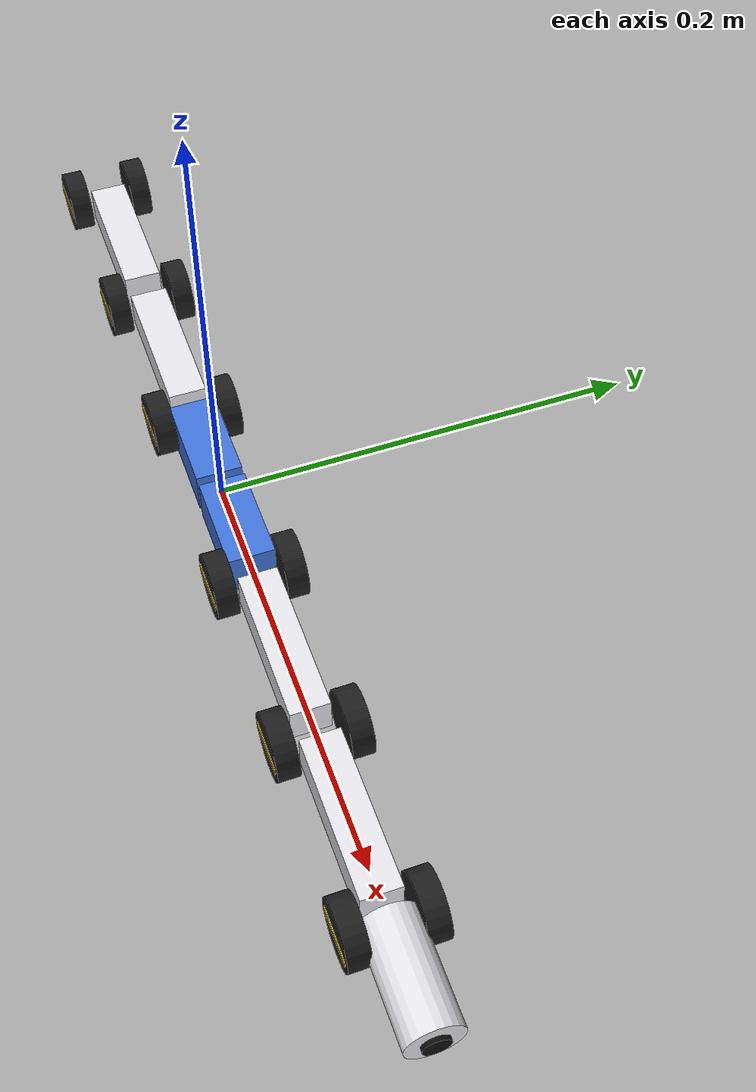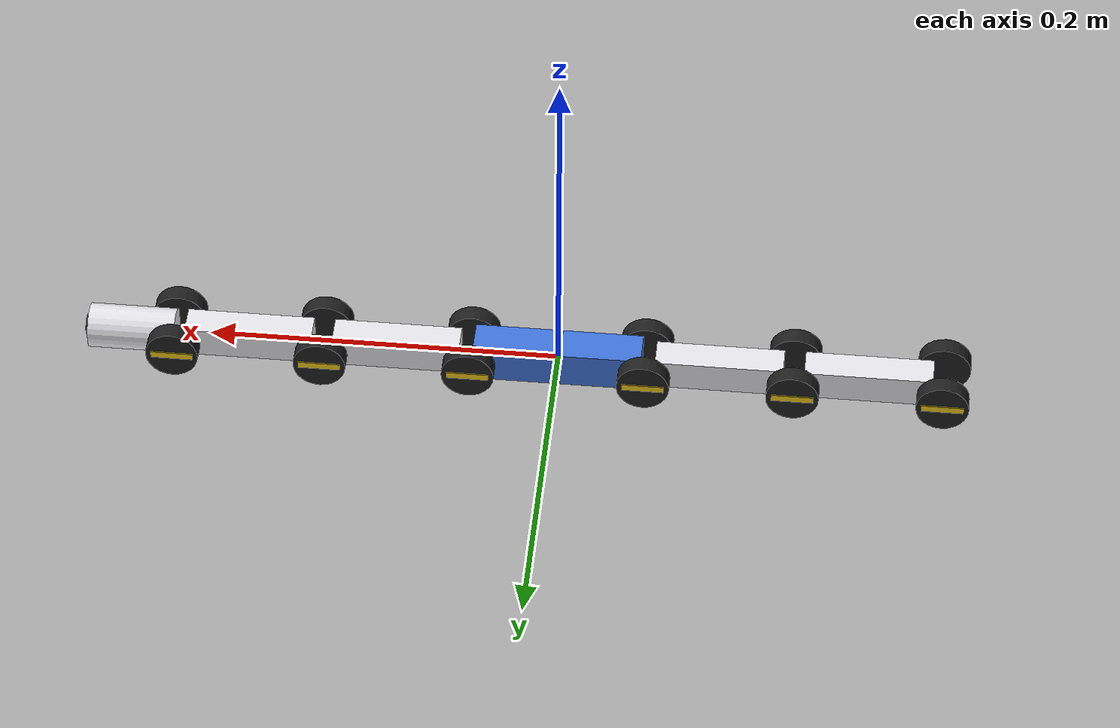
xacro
<?xml version="1.0"?>
<robot name="snake_v" xmlns:xacro="http://www.ros.org/wiki/xacro">
  <xacro:arg name="pipe_inner_d" default="0.1008"/>
  <xacro:arg name="params_file" default=""/>
  <xacro:arg name="suspension" default="all"/>
  <xacro:include filename="$(find pipe_robot_sim)/models/common/common.xacro"/>

  <!-- ===== 치수 ===== -->
  <xacro:property name="L" value="0.085"/>      <!-- V 팔 (관절 ~ 관절) -->
  <xacro:property name="Lm" value="0.10"/>      <!-- 가운데 링크 (J2 ~ J4), 가운데에 J3 -->
  <xacro:property name="Lh" value="0.05"/>      <!-- 머리 (J6 ~ 앞 끝) -->
  <xacro:property name="bw" value="0.018"/>     <!-- 링크 단면 (정사각) -->
  <xacro:property name="rw" value="0.015"/>     <!-- 바퀴 반경 (Ø30) -->
  <xacro:property name="ww" value="0.010"/>     <!-- 바퀴 폭 -->
  <xacro:property name="yw" value="0.016"/>     <!-- 바퀴 중심의 좌우 위치 (±) -->

  <!-- 질량 (링크 안 서보 포함, 추정). 총 약 0.75 kg -->
  <xacro:arg name="mass_scale" default="1.0"/>   <!-- 비교 시험용: 링크 질량 배율 -->
  <xacro:property name="m_arm" value="${0.07*$(arg mass_scale)}"/>
  <xacro:property name="m_mid" value="${0.08*$(arg mass_scale)}"/>   <!-- 가운데 링크 반쪽 2개 (배터리·보드) -->
  <xacro:property name="m_head" value="${0.06*$(arg mass_scale)}"/>
  <xacro:property name="m_wheel" value="0.012"/>

  <!-- 바퀴 모터: N20 1:100 추정 (스톨 0.147 N·m, 무부하 16.8 rad/s), 감쇠 = 스톨/무부하 -->
  <xacro:arg name="motor_stall" default="0.147"/>   <!-- 비교 시험용: robot.yaml motor_stall_torque 와 같게 -->
  <xacro:property name="wheel_damping" value="${$(arg motor_stall)/16.8}"/>
  <xacro:arg name="mu_wheel" default="0.8"/>
  <xacro:property name="mu_wheel" value="$(arg mu_wheel)"/>   <!-- 고무 바퀴 ↔ PVC, 추정 -->

  <!-- 관절 서보 (추정): 꼭짓점 J1, J5 = 누르는 관절, 나머지 = 자세 유지 -->
  <xacro:arg name="servo_p" default="2"/>   <!-- 서보 위치 게인 [N·m/rad] -->
  <xacro:arg name="servo_scale" default="1.0"/>   <!-- 비교 시험용: 서보 토크 한계 배율 -->
  <xacro:property name="t_clamp" value="${1.2*$(arg servo_scale)}"/>    <!-- J1, J5 토크 한계 [N·m] -->
  <xacro:property name="t_hold" value="${1.0*$(arg servo_scale)}"/>
  <xacro:arg name="roll_scale" default="1.0"/>
  <xacro:property name="t_roll" value="${0.5*$(arg servo_scale)*$(arg roll_scale)}"/>
  <xacro:property name="jlim" value="${radians(120)}"/>
  <!-- 서보 감쇠는 관절 damping 으로 (DART 가 암시적으로 적분 -> 안정). 제어기 d_gain 은 0:
       d_gain 은 오차의 미분이라 목표가 바뀔 때마다(50 Hz) 한 스텝 동안 최대 토크로 차서 관절이 속도 한계(3 rad/s)로
       떨렸음 (2026-10-20, 이전 d_gain 0.05 + damping 0.02) -->
  <xacro:property name="servo_damping" value="0.07"/>

  <!-- ===== 매크로 ===== -->
  <xacro:macro name="arm_link" params="name dir length mass">
    <!-- dir = +1: 관절에서 +x 로 뻗음, -1: -x 로 -->
    <link name="${name}">
      <visual>
        <origin xyz="${dir*length/2} 0 0" rpy="0 0 0"/>
        <geometry><box size="${length - 2*rw*0.4} ${bw} ${bw}"/></geometry>
        <material name="snake_white"><color rgba="0.9 0.9 0.92 1"/></material>
      </visual>
      <collision>
        <origin xyz="${dir*length/2} 0 0" rpy="0 0 0"/>
        <geometry><box size="${length - 2*rw*1.1} ${bw} ${bw}"/></geometry>
      </collision>
      <xacro:inertial_box m="${mass}" x="${length}" y="${bw}" z="${bw}" xyz="${dir*length/2} 0 0"/>
    </link>
  </xacro:macro>

  <!-- 바퀴 한 쌍 (구동). name_l / name_r, 충돌체는 구 (배관 곡면과 접촉이 안정적)
       spin = -1: 위 벽에 닿는 꼭짓점 바퀴 (J1, J5). 축을 뒤집어 같은 + 속도 명령에 로봇이 앞으로 가게 함 -->
  <xacro:macro name="wheel_pair" params="name parent x spin:=1">
    <xacro:wheel name="${name}_l" parent="${parent}" x="${x}" side="1" spin="${spin}"/>
    <xacro:wheel name="${name}_r" parent="${parent}" x="${x}" side="-1" spin="${spin}"/>
  </xacro:macro>
  <xacro:macro name="wheel" params="name parent x side spin">
    <joint name="${name}_joint" type="continuous">
      <parent link="${parent}"/>
      <child link="${name}"/>
      <origin xyz="${x} ${side*yw} 0" rpy="0 0 0"/>
      <axis xyz="0 ${spin} 0"/>
      <dynamics damping="${wheel_damping}" friction="0"/>
    </joint>
    <link name="${name}">
      <visual>
        <origin xyz="0 0 0" rpy="${pi/2} 0 0"/>
        <geometry><cylinder radius="${rw}" length="${ww}"/></geometry>
        <material name="tire_black"><color rgba="0.12 0.12 0.12 1"/></material>
      </visual>
      <visual>   <!-- 회전이 보이게 하는 표시 -->
        <origin xyz="0 ${side*ww/2} 0" rpy="${pi/2} 0 0"/>
        <geometry><box size="${1.6*rw} 0.004 0.001"/></geometry>
        <material name="mark_yellow"><color rgba="0.95 0.8 0.1 1"/></material>
      </visual>
      <collision>
        <geometry><sphere radius="${rw}"/></geometry>
      </collision>
      <xacro:inertial_cyl m="${m_wheel}" r="${rw}" l="${ww}" rpy="${pi/2} 0 0"/>
    </link>
    <xacro:friction link="${name}" mu="${mu_wheel}"/>
    <xacro:joint_force joint="${name}_joint"/>
  </xacro:macro>

  <xacro:macro name="pitch_joint" params="name parent child x tmax p">
    <joint name="${name}" type="revolute">
      <parent link="${parent}"/>
      <child link="${child}"/>
      <origin xyz="${x} 0 0" rpy="0 0 0"/>
      <axis xyz="0 1 0"/>
      <limit lower="${-jlim}" upper="${jlim}" effort="${tmax}" velocity="3.0"/>
      <dynamics damping="${servo_damping}" friction="0"/>
    </joint>
    <xacro:joint_servo joint="${name}" p="${p}" d="0" tmax="${tmax}"/>
  </xacro:macro>

  <!-- ===== 가운데 링크 ===== -->
  <link name="base_link">
    <visual>
      <origin xyz="${Lm/4} 0 0" rpy="0 0 0"/>
      <geometry><box size="${Lm/2 - 0.004} ${bw*1.2} ${bw*1.2}"/></geometry>
      <material name="snake_blue"><color rgba="0.25 0.45 0.85 1"/></material>
    </visual>
    <collision>
      <origin xyz="${Lm/4 - rw*0.55} 0 0" rpy="0 0 0"/>
      <geometry><box size="${Lm/2 - rw*1.1} ${bw} ${bw}"/></geometry>
    </collision>
    <xacro:inertial_box m="${m_mid}" x="${Lm/2}" y="${bw}" z="${bw}" xyz="${Lm/4} 0 0"/>
  </link>

  <!-- J3: 비틀기 (축 x) -->
  <joint name="j3_joint" type="revolute">
    <parent link="base_link"/>
    <child link="mid_rear"/>
    <origin xyz="0 0 0" rpy="0 0 0"/>
    <axis xyz="1 0 0"/>
    <limit lower="${-pi}" upper="${pi}" effort="${t_roll}" velocity="3.0"/>
    <dynamics damping="${servo_damping}" friction="0"/>
  </joint>
  <xacro:joint_servo joint="j3_joint" p="3" d="0" tmax="${t_roll}"/>
  <link name="mid_rear">
    <visual>
      <origin xyz="${-Lm/4} 0 0" rpy="0 0 0"/>
      <geometry><box size="${Lm/2 - 0.004} ${bw*1.2} ${bw*1.2}"/></geometry>
      <material name="snake_blue"/>
    </visual>
    <collision>
      <origin xyz="${-Lm/4 + rw*0.55} 0 0" rpy="0 0 0"/>
      <geometry><box size="${Lm/2 - rw*1.1} ${bw} ${bw}"/></geometry>
    </collision>
    <xacro:inertial_box m="${m_mid}" x="${Lm/2}" y="${bw}" z="${bw}" xyz="${-Lm/4} 0 0"/>
  </link>

  <!-- ===== 앞쪽: J4(w4) ─ f1 ─ J5(w5) ─ f2 ─ J6(w6) ─ 머리 ===== -->
  <xacro:wheel_pair name="w4" parent="base_link" x="${Lm/2}"/>
  <xacro:pitch_joint name="j4_joint" parent="base_link" child="f1" x="${Lm/2}" tmax="${t_hold}" p="$(arg servo_p)"/>
  <xacro:arm_link name="f1" dir="1" length="${L}" mass="${m_arm}"/>
  <xacro:wheel_pair name="w5" parent="f1" x="${L}" spin="-1"/>
  <xacro:pitch_joint name="j5_joint" parent="f1" child="f2" x="${L}" tmax="${t_clamp}" p="$(arg servo_p)"/>
  <xacro:arm_link name="f2" dir="1" length="${L}" mass="${m_arm}"/>
  <xacro:wheel_pair name="w6" parent="f2" x="${L}"/>
  <xacro:pitch_joint name="j6_joint" parent="f2" child="head" x="${L}" tmax="${t_hold}" p="$(arg servo_p)"/>
  <link name="head">
    <visual>
      <origin xyz="${Lh/2} 0 0" rpy="0 ${pi/2} 0"/>
      <geometry><cylinder radius="${bw*0.7}" length="${Lh}"/></geometry>
      <material name="snake_white"/>
    </visual>
    <visual>   <!-- 카메라 -->
      <origin xyz="${Lh} 0 0" rpy="0 ${pi/2} 0"/>
      <geometry><cylinder radius="0.006" length="0.004"/></geometry>
      <material name="cam_black"><color rgba="0.05 0.05 0.05 1"/></material>
    </visual>
    <collision>
      <origin xyz="${Lh/2 + rw*0.5} 0 0" rpy="0 ${pi/2} 0"/>
      <geometry><cylinder radius="${bw*0.7}" length="${Lh - rw}"/></geometry>
    </collision>
    <xacro:inertial_cyl m="${m_head}" r="${bw*0.7}" l="${Lh}" xyz="${Lh/2} 0 0" rpy="0 ${pi/2} 0"/>
  </link>

  <!-- ===== 뒤쪽: J2(w3) ─ r2 ─ J1(w2) ─ r1 ─ w1 ===== -->
  <xacro:wheel_pair name="w3" parent="mid_rear" x="${-Lm/2}"/>
  <xacro:pitch_joint name="j2_joint" parent="mid_rear" child="r2" x="${-Lm/2}" tmax="${t_hold}" p="$(arg servo_p)"/>
  <xacro:arm_link name="r2" dir="-1" length="${L}" mass="${m_arm}"/>
  <xacro:wheel_pair name="w2" parent="r2" x="${-L}" spin="-1"/>
  <xacro:pitch_joint name="j1_joint" parent="r2" child="r1" x="${-L}" tmax="${t_clamp}" p="$(arg servo_p)"/>
  <xacro:arm_link name="r1" dir="-1" length="${L}" mass="${m_arm}"/>
  <xacro:wheel_pair name="w1" parent="r1" x="${-L}"/>

  <!-- ===== 시뮬 플러그인 (IMU 는 가운데 링크) ===== -->
  <xacro:sim_common imu_parent="base_link" imu_xyz="${Lm/4} 0 0"/>
</robot>

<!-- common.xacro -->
<!-- 모델 공통 매크로: 관성, 옴니휠(롤러), 시뮬 플러그인 (docs/02 규약)
     단위 m, kg, rad. 함수는 sin, cos, asin, atan2, sqrt, radians, pi 만 씀 (VS Code URDF Visualizer와 xacro 둘 다 지원) -->
<robot xmlns:xacro="http://www.ros.org/wiki/xacro">

  <!-- ===== 관성 (아주 작은 값은 1e-8을 더해 0이 되지 않게) ===== -->
  <xacro:macro name="inertial_box" params="m x y z xyz:='0 0 0' rpy:='0 0 0'">
    <inertial>
      <origin xyz="${xyz}" rpy="${rpy}"/>
      <mass value="${m}"/>
      <inertia ixx="${m*(y*y+z*z)/12 + 1e-8}" ixy="0" ixz="0" iyy="${m*(x*x+z*z)/12 + 1e-8}" iyz="0"
               izz="${m*(x*x+y*y)/12 + 1e-8}"/>
    </inertial>
  </xacro:macro>

  <!-- 원기둥: 축은 origin 회전 후의 z -->
  <xacro:macro name="inertial_cyl" params="m r l xyz:='0 0 0' rpy:='0 0 0'">
    <inertial>
      <origin xyz="${xyz}" rpy="${rpy}"/>
      <mass value="${m}"/>
      <inertia ixx="${m*(3*r*r+l*l)/12 + 1e-8}" ixy="0" ixz="0" iyy="${m*(3*r*r+l*l)/12 + 1e-8}" iyz="0"
               izz="${m*r*r/2 + 1e-8}"/>
    </inertial>
  </xacro:macro>

  <xacro:macro name="inertial_sphere" params="m r xyz:='0 0 0'">
    <inertial>
      <origin xyz="${xyz}" rpy="0 0 0"/>
      <mass value="${m}"/>
      <inertia ixx="${0.4*m*r*r + 1e-8}" ixy="0" ixz="0" iyy="${0.4*m*r*r + 1e-8}" iyz="0" izz="${0.4*m*r*r + 1e-8}"/>
    </inertial>
  </xacro:macro>

  <!-- spin = -1: 위 벽에 닿는 바퀴 (축을 뒤집어 같은 + 속도 명령에 앞으로 감) -->
  <xacro:macro name="omni_wheel" params="name parent xyz R width n rr row hub_mass roller_mass mu damping spin:=1">
    <joint name="${name}_joint" type="continuous">
      <parent link="${parent}"/>
      <child link="${name}"/>
      <origin xyz="${xyz}" rpy="0 0 0"/>
      <axis xyz="0 ${spin} 0"/>
      <dynamics damping="${damping}" friction="0"/>
    </joint>
    <link name="${name}">
      <visual>
        <origin xyz="0 0 0" rpy="${pi/2} 0 0"/>
        <geometry><cylinder radius="${R - 1.6*rr}" length="${width*0.8}"/></geometry>
        <material name="omni_hub"><color rgba="0.75 0.75 0.78 1"/></material>
      </visual>
      <xacro:inertial_cyl m="${hub_mass}" r="${R - rr}" l="${width}" rpy="${pi/2} 0 0"/>
    </link>
    <xacro:omni_rollers hub="${name}" n="${n}" i="0" R="${R}" rr="${rr}" y="${-row}" phase="0"
                        m="${roller_mass}" mu="${mu}" tag="a"/>
    <xacro:omni_rollers hub="${name}" n="${n}" i="0" R="${R}" rr="${rr}" y="${row}" phase="${pi/n}"
                        m="${roller_mass}" mu="${mu}" tag="b"/>
  </xacro:macro>

  <!-- 롤러 한 줄 (재귀). 롤러 중심은 허브 중심에서 R-rr, 축은 접선 (-sin, 0, cos) -->
  <xacro:macro name="omni_rollers" params="hub n i R rr y phase m mu tag">
    <xacro:if value="${i &lt; n}">
      <joint name="${hub}_${tag}${i}_joint" type="continuous">
        <parent link="${hub}"/>
        <child link="${hub}_${tag}${i}"/>
        <origin xyz="${(R-rr)*cos(2*pi*i/n + phase)} ${y} ${(R-rr)*sin(2*pi*i/n + phase)}" rpy="0 0 0"/>
        <axis xyz="${-sin(2*pi*i/n + phase)} 0 ${cos(2*pi*i/n + phase)}"/>
        <dynamics damping="0.00001" friction="0"/>
      </joint>
      <link name="${hub}_${tag}${i}">
        <visual>
          <origin xyz="0 0 0" rpy="0 ${-(2*pi*i/n + phase)} 0"/>
          <geometry><cylinder radius="${rr}" length="${1.5*rr}"/></geometry>
          <material name="omni_roller"><color rgba="0.25 0.25 0.25 1"/></material>
        </visual>
        <collision>
          <geometry><sphere radius="${rr}"/></geometry>
        </collision>
        <xacro:inertial_sphere m="${m}" r="${rr}"/>
      </link>
      <gazebo reference="${hub}_${tag}${i}">
        <mu1>${mu}</mu1>
        <mu2>${mu}</mu2>
      </gazebo>
      <xacro:omni_rollers hub="${hub}" n="${n}" i="${i+1}" R="${R}" rr="${rr}" y="${y}" phase="${phase}"
                          m="${m}" mu="${mu}" tag="${tag}"/>
    </xacro:if>
  </xacro:macro>

  <!-- ===== 시뮬 플러그인 (docs/02 규약) ===== -->

  <!-- 관절 상태, 정답 위치, IMU (imu_link 를 parent 에 고정) -->
  <xacro:macro name="sim_common" params="imu_parent imu_xyz:='0 0 0'">
    <joint name="imu_joint" type="fixed">
      <parent link="${imu_parent}"/>
      <child link="imu_link"/>
      <origin xyz="${imu_xyz}" rpy="0 0 0"/>
    </joint>
    <link name="imu_link"/>
    <gazebo reference="imu_link">
      <sensor name="imu" type="imu">
        <always_on>1</always_on>
        <update_rate>200</update_rate>
        <topic>/imu</topic>
        <imu>
          <!-- MPU6050 수준 노이즈 (docs/08) -->
          <angular_velocity>
            <x><noise type="gaussian"><mean>0</mean><stddev>0.0012</stddev></noise></x>
            <y><noise type="gaussian"><mean>0</mean><stddev>0.0012</stddev></noise></y>
            <z><noise type="gaussian"><mean>0</mean><stddev>0.0012</stddev></noise></z>
          </angular_velocity>
          <linear_acceleration>
            <x><noise type="gaussian"><mean>0</mean><stddev>0.055</stddev></noise></x>
            <y><noise type="gaussian"><mean>0</mean><stddev>0.055</stddev></noise></y>
            <z><noise type="gaussian"><mean>0</mean><stddev>0.055</stddev></noise></z>
          </linear_acceleration>
        </imu>
      </sensor>
    </gazebo>
    <gazebo>
      <plugin filename="ignition-gazebo-joint-state-publisher-system"
              name="ignition::gazebo::systems::JointStatePublisher">
        <topic>/joint_states</topic>
      </plugin>
      <plugin filename="ignition-gazebo-odometry-publisher-system"
              name="ignition::gazebo::systems::OdometryPublisher">
        <odom_frame>world</odom_frame>
        <robot_base_frame>base_link</robot_base_frame>
        <odom_topic>/ground_truth/odom</odom_topic>
        <odom_publish_frequency>100</odom_publish_frequency>
        <dimensions>3</dimensions>
      </plugin>
    </gazebo>
  </xacro:macro>

  <xacro:macro name="joint_force" params="joint">
    <gazebo>
      <plugin filename="ignition-gazebo-apply-joint-force-system"
              name="ignition::gazebo::systems::ApplyJointForce">
        <joint_name>${joint}</joint_name>
      </plugin>
    </gazebo>
  </xacro:macro>

  <xacro:macro name="joint_servo" params="joint p d tmax">
    <gazebo>
      <plugin filename="ignition-gazebo-joint-position-controller-system"
              name="ignition::gazebo::systems::JointPositionController">
        <joint_name>${joint}</joint_name>
        <topic>/servo/${joint}</topic>
        <p_gain>${p}</p_gain>
        <i_gain>0</i_gain>
        <d_gain>${d}</d_gain>
        <cmd_max>${tmax}</cmd_max>
        <cmd_min>${-tmax}</cmd_min>
      </plugin>
    </gazebo>
  </xacro:macro>

  <!-- 토션 스프링 관절: 토크 = -k (q - ref) -->
  <xacro:macro name="joint_spring" params="joint k ref">
    <gazebo reference="${joint}">
      <springReference>${ref}</springReference>
      <springStiffness>${k}</springStiffness>
      <implicitSpringDamper>true</implicitSpringDamper>
    </gazebo>
  </xacro:macro>

  <xacro:macro name="friction" params="link mu">
    <gazebo reference="${link}">
      <mu1>${mu}</mu1>
      <mu2>${mu}</mu2>
    </gazebo>
  </xacro:macro>

</robot>
